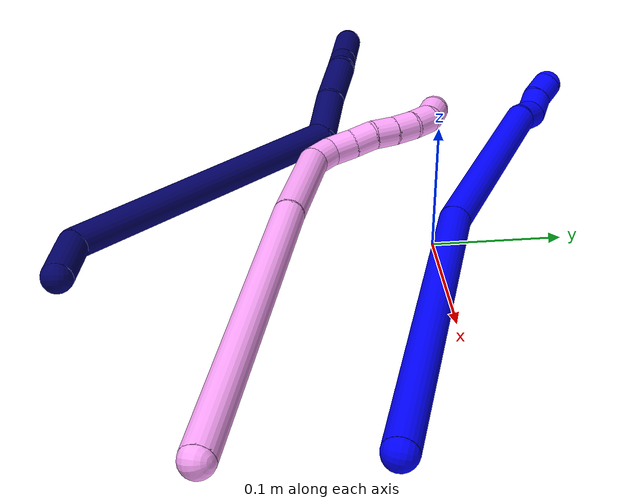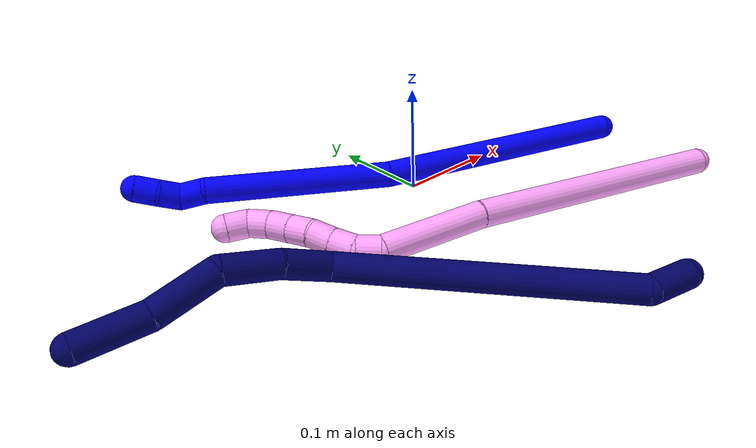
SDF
<sdf version="1.7">
 <world name="default">
  <model name="1">
   <static>0</static>
   <link name="1">
    <collision name="collision-cylinder-e_1_1_4">
     <pose>-0.117741 0.055267 -0.003864 -1.64059 -1.13099 1.1951</pose>
     <geometry><cylinder><radius>0.0125</radius><length>0.260248</length></cylinder></geometry>
     <surface>
      <friction><ode><mu>1.16</mu><mu2>1.16</mu2><slip1>0</slip1><slip2>0</slip2></ode></friction>
      <contact><ode><kp>1e+06</kp><kd>1</kd><max_vel>0</max_vel><min_depth>0.001</min_depth></ode></contact>
     </surface>
    </collision>
    <visual name="visual-cylinder-e_1_1_4">
     <pose>-0.117741 0.055267 -0.003864 -1.64059 -1.13099 1.1951</pose>
     <geometry><cylinder><radius>0.0125</radius><length>0.260248</length></cylinder></geometry>
     <material><ambient>0 0 1 1</ambient></material>
    </visual>
    <collision name="collision-cylinder-e_2_4_5">
     <pose>-0.310062 0.15118 -0.028153 -2.03646 -1.02309 1.47707</pose>
     <geometry><cylinder><radius>0.0125</radius><length>0.174716</length></cylinder></geometry>
     <surface>
      <friction><ode><mu>1.16</mu><mu2>1.16</mu2><slip1>0</slip1><slip2>0</slip2></ode></friction>
      <contact><ode><kp>1e+06</kp><kd>1</kd><max_vel>0</max_vel><min_depth>0.001</min_depth></ode></contact>
     </surface>
    </collision>
    <visual name="visual-cylinder-e_2_4_5">
     <pose>-0.310062 0.15118 -0.028153 -2.03646 -1.02309 1.47707</pose>
     <geometry><cylinder><radius>0.0125</radius><length>0.174716</length></cylinder></geometry>
     <material><ambient>0 0 1 1</ambient></material>
    </visual>
    <collision name="collision-cylinder-e_3_5_6">
     <pose>-0.39497 0.194431 -0.053467 -2.65199 -1.0786 2.35074</pose>
     <geometry><cylinder><radius>0.0125</radius><length>0.023441</length></cylinder></geometry>
     <surface>
      <friction><ode><mu>1.16</mu><mu2>1.16</mu2><slip1>0</slip1><slip2>0</slip2></ode></friction>
      <contact><ode><kp>1e+06</kp><kd>1</kd><max_vel>0</max_vel><min_depth>0.001</min_depth></ode></contact>
     </surface>
    </collision>
    <visual name="visual-cylinder-e_3_5_6">
     <pose>-0.39497 0.194431 -0.053467 -2.65199 -1.0786 2.35074</pose>
     <geometry><cylinder><radius>0.0125</radius><length>0.023441</length></cylinder></geometry>
     <material><ambient>0 0 1 1</ambient></material>
    </visual>
    <collision name="collision-cylinder-e_4_6_7">
     <pose>-0.412301 0.204464 -0.059637 -1.74171 -0.74854 0.872793</pose>
     <geometry><cylinder><radius>0.0125</radius><length>0.020575</length></cylinder></geometry>
     <surface>
      <friction><ode><mu>1.16</mu><mu2>1.16</mu2><slip1>0</slip1><slip2>0</slip2></ode></friction>
      <contact><ode><kp>1e+06</kp><kd>1</kd><max_vel>0</max_vel><min_depth>0.001</min_depth></ode></contact>
     </surface>
    </collision>
    <visual name="visual-cylinder-e_4_6_7">
     <pose>-0.412301 0.204464 -0.059637 -1.74171 -0.74854 0.872793</pose>
     <geometry><cylinder><radius>0.0125</radius><length>0.020575</length></cylinder></geometry>
     <material><ambient>0 0 1 1</ambient></material>
    </visual>
    <collision name="collision-cylinder-e_5_7_2">
     <pose>-0.426404 0.218659 -0.06469 -2.07919 -0.741875 1.16952</pose>
     <geometry><cylinder><radius>0.0125</radius><length>0.021019</length></cylinder></geometry>
     <surface>
      <friction><ode><mu>1.16</mu><mu2>1.16</mu2><slip1>0</slip1><slip2>0</slip2></ode></friction>
      <contact><ode><kp>1e+06</kp><kd>1</kd><max_vel>0</max_vel><min_depth>0.001</min_depth></ode></contact>
     </surface>
    </collision>
    <visual name="visual-cylinder-e_5_7_2">
     <pose>-0.426404 0.218659 -0.06469 -2.07919 -0.741875 1.16952</pose>
     <geometry><cylinder><radius>0.0125</radius><length>0.021019</length></cylinder></geometry>
     <material><ambient>0 0 1 1</ambient></material>
    </visual>
    <collision name="collision-sphere-2">
     <pose>-0.433505 0.225427 -0.068462 0 -0 0</pose>
     <geometry><sphere><radius>0.0125</radius></sphere></geometry>
     <surface>
      <friction><ode><mu>1.16</mu><mu2>1.16</mu2><slip1>0</slip1><slip2>0</slip2></ode></friction>
      <contact><ode><kp>1e+06</kp><kd>1</kd><max_vel>0</max_vel><min_depth>0.001</min_depth></ode></contact>
     </surface>
    </collision>
    <visual name="visual-sphere-2">
     <pose>-0.433505 0.225427 -0.068462 0 -0 0</pose>
     <geometry><sphere><radius>0.0125</radius></sphere></geometry>
     <material><ambient>0 0 1 1</ambient></material>
    </visual>
    <collision name="collision-sphere-7">
     <pose>-0.419303 0.211891 -0.060919 0 -0 0</pose>
     <geometry><sphere><radius>0.0125</radius></sphere></geometry>
     <surface>
      <friction><ode><mu>1.16</mu><mu2>1.16</mu2><slip1>0</slip1><slip2>0</slip2></ode></friction>
      <contact><ode><kp>1e+06</kp><kd>1</kd><max_vel>0</max_vel><min_depth>0.001</min_depth></ode></contact>
     </surface>
    </collision>
    <visual name="visual-sphere-7">
     <pose>-0.419303 0.211891 -0.060919 0 -0 0</pose>
     <geometry><sphere><radius>0.0125</radius></sphere></geometry>
     <material><ambient>0 0 1 1</ambient></material>
    </visual>
    <collision name="collision-sphere-6">
     <pose>-0.4053 0.197036 -0.058355 0 -0 0</pose>
     <geometry><sphere><radius>0.0125</radius></sphere></geometry>
     <surface>
      <friction><ode><mu>1.16</mu><mu2>1.16</mu2><slip1>0</slip1><slip2>0</slip2></ode></friction>
      <contact><ode><kp>1e+06</kp><kd>1</kd><max_vel>0</max_vel><min_depth>0.001</min_depth></ode></contact>
     </surface>
    </collision>
    <visual name="visual-sphere-6">
     <pose>-0.4053 0.197036 -0.058355 0 -0 0</pose>
     <geometry><sphere><radius>0.0125</radius></sphere></geometry>
     <material><ambient>0 0 1 1</ambient></material>
    </visual>
    <collision name="collision-sphere-5">
     <pose>-0.384641 0.191826 -0.048579 0 -0 0</pose>
     <geometry><sphere><radius>0.0125</radius></sphere></geometry>
     <surface>
      <friction><ode><mu>1.16</mu><mu2>1.16</mu2><slip1>0</slip1><slip2>0</slip2></ode></friction>
      <contact><ode><kp>1e+06</kp><kd>1</kd><max_vel>0</max_vel><min_depth>0.001</min_depth></ode></contact>
     </surface>
    </collision>
    <visual name="visual-sphere-5">
     <pose>-0.384641 0.191826 -0.048579 0 -0 0</pose>
     <geometry><sphere><radius>0.0125</radius></sphere></geometry>
     <material><ambient>0 0 1 1</ambient></material>
    </visual>
    <collision name="collision-sphere-1">
     <geometry><sphere><radius>0.0125</radius></sphere></geometry>
     <surface>
      <friction><ode><mu>1.16</mu><mu2>1.16</mu2><slip1>0</slip1><slip2>0</slip2></ode></friction>
      <contact><ode><kp>1e+06</kp><kd>1</kd><max_vel>0</max_vel><min_depth>0.001</min_depth></ode></contact>
     </surface>
    </collision>
    <visual name="visual-sphere-1">
     <geometry><sphere><radius>0.0125</radius></sphere></geometry>
     <material><ambient>0 0 1 1</ambient></material>
    </visual>
    <collision name="collision-sphere-4">
     <pose>-0.235482 0.110534 -0.007727 0 -0 0</pose>
     <geometry><sphere><radius>0.0125</radius></sphere></geometry>
     <surface>
      <friction><ode><mu>1.16</mu><mu2>1.16</mu2><slip1>0</slip1><slip2>0</slip2></ode></friction>
      <contact><ode><kp>1e+06</kp><kd>1</kd><max_vel>0</max_vel><min_depth>0.001</min_depth></ode></contact>
     </surface>
    </collision>
    <visual name="visual-sphere-4">
     <pose>-0.235482 0.110534 -0.007727 0 -0 0</pose>
     <geometry><sphere><radius>0.0125</radius></sphere></geometry>
     <material><ambient>0 0 1 1</ambient></material>
    </visual>
    <inertial>
     <pose>-0.223038 0.108315 -0.019529 0 -0 0</pose>
     <mass>0.5</mass>
     <inertia>
      <ixx>0.001042</ixx>
      <ixy>0</ixy>
      <ixz>0</ixz>
      <iyy>0.002371</iyy>
      <iyz>0</iyz>
      <izz>0.000881</izz>
     </inertia>
    </inertial>
   </link>
   <pose>0.232578 -0.059705 0.011514 1.42275 -0.430716 -0.217439</pose>
  </model>
  <model name="4">
   <static>0</static>
   <link name="4">
    <collision name="collision-cylinder-e_1_1_4">
     <pose>-0.103382 0.060996 0.049483 -0.889233 -0.921092 0.464224</pose>
     <geometry><cylinder><radius>0.0125</radius><length>0.259669</length></cylinder></geometry>
     <surface>
      <friction><ode><mu>1.16</mu><mu2>1.16</mu2><slip1>0</slip1><slip2>0</slip2></ode></friction>
      <contact><ode><kp>1e+06</kp><kd>1</kd><max_vel>0</max_vel><min_depth>0.001</min_depth></ode></contact>
     </surface>
    </collision>
    <visual name="visual-cylinder-e_1_1_4">
     <pose>-0.103382 0.060996 0.049483 -0.889233 -0.921092 0.464224</pose>
     <geometry><cylinder><radius>0.0125</radius><length>0.259669</length></cylinder></geometry>
     <material><ambient>1 0.65098 0.996078 1</ambient></material>
    </visual>
    <collision name="collision-cylinder-e_2_4_5">
     <pose>-0.246682 0.139673 0.118801 -0.728056 -0.983481 0.402628</pose>
     <geometry><cylinder><radius>0.0125</radius><length>0.095904</length></cylinder></geometry>
     <surface>
      <friction><ode><mu>1.16</mu><mu2>1.16</mu2><slip1>0</slip1><slip2>0</slip2></ode></friction>
      <contact><ode><kp>1e+06</kp><kd>1</kd><max_vel>0</max_vel><min_depth>0.001</min_depth></ode></contact>
     </surface>
    </collision>
    <visual name="visual-cylinder-e_2_4_5">
     <pose>-0.246682 0.139673 0.118801 -0.728056 -0.983481 0.402628</pose>
     <geometry><cylinder><radius>0.0125</radius><length>0.095904</length></cylinder></geometry>
     <material><ambient>1 0.65098 0.996078 1</ambient></material>
    </visual>
    <collision name="collision-cylinder-e_3_5_6">
     <pose>-0.296958 0.160693 0.137931 -1.77904 -1.2526 1.4571</pose>
     <geometry><cylinder><radius>0.0125</radius><length>0.021812</length></cylinder></geometry>
     <surface>
      <friction><ode><mu>1.16</mu><mu2>1.16</mu2><slip1>0</slip1><slip2>0</slip2></ode></friction>
      <contact><ode><kp>1e+06</kp><kd>1</kd><max_vel>0</max_vel><min_depth>0.001</min_depth></ode></contact>
     </surface>
    </collision>
    <visual name="visual-cylinder-e_3_5_6">
     <pose>-0.296958 0.160693 0.137931 -1.77904 -1.2526 1.4571</pose>
     <geometry><cylinder><radius>0.0125</radius><length>0.021812</length></cylinder></geometry>
     <material><ambient>1 0.65098 0.996078 1</ambient></material>
    </visual>
    <collision name="collision-cylinder-e_4_6_7">
     <pose>-0.316571 0.166634 0.132184 -2.66499 -1.02089 2.32295</pose>
     <geometry><cylinder><radius>0.0125</radius><length>0.021711</length></cylinder></geometry>
     <surface>
      <friction><ode><mu>1.16</mu><mu2>1.16</mu2><slip1>0</slip1><slip2>0</slip2></ode></friction>
      <contact><ode><kp>1e+06</kp><kd>1</kd><max_vel>0</max_vel><min_depth>0.001</min_depth></ode></contact>
     </surface>
    </collision>
    <visual name="visual-cylinder-e_4_6_7">
     <pose>-0.316571 0.166634 0.132184 -2.66499 -1.02089 2.32295</pose>
     <geometry><cylinder><radius>0.0125</radius><length>0.021711</length></cylinder></geometry>
     <material><ambient>1 0.65098 0.996078 1</ambient></material>
    </visual>
    <collision name="collision-cylinder-e_5_7_8">
     <pose>-0.334164 0.172248 0.122037 -2.6088 -0.95275 2.1687</pose>
     <geometry><cylinder><radius>0.0125</radius><length>0.02046</length></cylinder></geometry>
     <surface>
      <friction><ode><mu>1.16</mu><mu2>1.16</mu2><slip1>0</slip1><slip2>0</slip2></ode></friction>
      <contact><ode><kp>1e+06</kp><kd>1</kd><max_vel>0</max_vel><min_depth>0.001</min_depth></ode></contact>
     </surface>
    </collision>
    <visual name="visual-cylinder-e_5_7_8">
     <pose>-0.334164 0.172248 0.122037 -2.6088 -0.95275 2.1687</pose>
     <geometry><cylinder><radius>0.0125</radius><length>0.02046</length></cylinder></geometry>
     <material><ambient>1 0.65098 0.996078 1</ambient></material>
    </visual>
    <collision name="collision-cylinder-e_6_8_9">
     <pose>-0.351563 0.176305 0.112374 -2.91586 -1.09441 2.77371</pose>
     <geometry><cylinder><radius>0.0125</radius><length>0.020393</length></cylinder></geometry>
     <surface>
      <friction><ode><mu>1.16</mu><mu2>1.16</mu2><slip1>0</slip1><slip2>0</slip2></ode></friction>
      <contact><ode><kp>1e+06</kp><kd>1</kd><max_vel>0</max_vel><min_depth>0.001</min_depth></ode></contact>
     </surface>
    </collision>
    <visual name="visual-cylinder-e_6_8_9">
     <pose>-0.351563 0.176305 0.112374 -2.91586 -1.09441 2.77371</pose>
     <geometry><cylinder><radius>0.0125</radius><length>0.020393</length></cylinder></geometry>
     <material><ambient>1 0.65098 0.996078 1</ambient></material>
    </visual>
    <collision name="collision-cylinder-e_7_9_10">
     <pose>-0.369634 0.179172 0.103853 -2.71114 -1.11995 2.47053</pose>
     <geometry><cylinder><radius>0.0125</radius><length>0.020022</length></cylinder></geometry>
     <surface>
      <friction><ode><mu>1.16</mu><mu2>1.16</mu2><slip1>0</slip1><slip2>0</slip2></ode></friction>
      <contact><ode><kp>1e+06</kp><kd>1</kd><max_vel>0</max_vel><min_depth>0.001</min_depth></ode></contact>
     </surface>
    </collision>
    <visual name="visual-cylinder-e_7_9_10">
     <pose>-0.369634 0.179172 0.103853 -2.71114 -1.11995 2.47053</pose>
     <geometry><cylinder><radius>0.0125</radius><length>0.020022</length></cylinder></geometry>
     <material><ambient>1 0.65098 0.996078 1</ambient></material>
    </visual>
    <collision name="collision-cylinder-e_8_10_11">
     <pose>-0.388143 0.183356 0.097821 -2.2893 -1.25145 2.01972</pose>
     <geometry><cylinder><radius>0.0125</radius><length>0.020007</length></cylinder></geometry>
     <surface>
      <friction><ode><mu>1.16</mu><mu2>1.16</mu2><slip1>0</slip1><slip2>0</slip2></ode></friction>
      <contact><ode><kp>1e+06</kp><kd>1</kd><max_vel>0</max_vel><min_depth>0.001</min_depth></ode></contact>
     </surface>
    </collision>
    <visual name="visual-cylinder-e_8_10_11">
     <pose>-0.388143 0.183356 0.097821 -2.2893 -1.25145 2.01972</pose>
     <geometry><cylinder><radius>0.0125</radius><length>0.020007</length></cylinder></geometry>
     <material><ambient>1 0.65098 0.996078 1</ambient></material>
    </visual>
    <collision name="collision-cylinder-e_9_11_2">
     <pose>-0.406494 0.189447 0.098573 -0.923141 -1.08514 0.58273</pose>
     <geometry><cylinder><radius>0.0125</radius><length>0.020021</length></cylinder></geometry>
     <surface>
      <friction><ode><mu>1.16</mu><mu2>1.16</mu2><slip1>0</slip1><slip2>0</slip2></ode></friction>
      <contact><ode><kp>1e+06</kp><kd>1</kd><max_vel>0</max_vel><min_depth>0.001</min_depth></ode></contact>
     </surface>
    </collision>
    <visual name="visual-cylinder-e_9_11_2">
     <pose>-0.406494 0.189447 0.098573 -0.923141 -1.08514 0.58273</pose>
     <geometry><cylinder><radius>0.0125</radius><length>0.020021</length></cylinder></geometry>
     <material><ambient>1 0.65098 0.996078 1</ambient></material>
    </visual>
    <collision name="collision-sphere-2">
     <pose>-0.415347 0.193174 0.101392 0 -0 0</pose>
     <geometry><sphere><radius>0.0125</radius></sphere></geometry>
     <surface>
      <friction><ode><mu>1.16</mu><mu2>1.16</mu2><slip1>0</slip1><slip2>0</slip2></ode></friction>
      <contact><ode><kp>1e+06</kp><kd>1</kd><max_vel>0</max_vel><min_depth>0.001</min_depth></ode></contact>
     </surface>
    </collision>
    <visual name="visual-sphere-2">
     <pose>-0.415347 0.193174 0.101392 0 -0 0</pose>
     <geometry><sphere><radius>0.0125</radius></sphere></geometry>
     <material><ambient>1 0.65098 0.996078 1</ambient></material>
    </visual>
    <collision name="collision-sphere-11">
     <pose>-0.397641 0.185721 0.095754 0 -0 0</pose>
     <geometry><sphere><radius>0.0125</radius></sphere></geometry>
     <surface>
      <friction><ode><mu>1.16</mu><mu2>1.16</mu2><slip1>0</slip1><slip2>0</slip2></ode></friction>
      <contact><ode><kp>1e+06</kp><kd>1</kd><max_vel>0</max_vel><min_depth>0.001</min_depth></ode></contact>
     </surface>
    </collision>
    <visual name="visual-sphere-11">
     <pose>-0.397641 0.185721 0.095754 0 -0 0</pose>
     <geometry><sphere><radius>0.0125</radius></sphere></geometry>
     <material><ambient>1 0.65098 0.996078 1</ambient></material>
    </visual>
    <collision name="collision-sphere-10">
     <pose>-0.378645 0.180992 0.099888 0 -0 0</pose>
     <geometry><sphere><radius>0.0125</radius></sphere></geometry>
     <surface>
      <friction><ode><mu>1.16</mu><mu2>1.16</mu2><slip1>0</slip1><slip2>0</slip2></ode></friction>
      <contact><ode><kp>1e+06</kp><kd>1</kd><max_vel>0</max_vel><min_depth>0.001</min_depth></ode></contact>
     </surface>
    </collision>
    <visual name="visual-sphere-10">
     <pose>-0.378645 0.180992 0.099888 0 -0 0</pose>
     <geometry><sphere><radius>0.0125</radius></sphere></geometry>
     <material><ambient>1 0.65098 0.996078 1</ambient></material>
    </visual>
    <collision name="collision-sphere-9">
     <pose>-0.360624 0.177352 0.107817 0 -0 0</pose>
     <geometry><sphere><radius>0.0125</radius></sphere></geometry>
     <surface>
      <friction><ode><mu>1.16</mu><mu2>1.16</mu2><slip1>0</slip1><slip2>0</slip2></ode></friction>
      <contact><ode><kp>1e+06</kp><kd>1</kd><max_vel>0</max_vel><min_depth>0.001</min_depth></ode></contact>
     </surface>
    </collision>
    <visual name="visual-sphere-9">
     <pose>-0.360624 0.177352 0.107817 0 -0 0</pose>
     <geometry><sphere><radius>0.0125</radius></sphere></geometry>
     <material><ambient>1 0.65098 0.996078 1</ambient></material>
    </visual>
    <collision name="collision-sphere-4">
     <pose>-0.206765 0.121992 0.098966 0 -0 0</pose>
     <geometry><sphere><radius>0.0125</radius></sphere></geometry>
     <surface>
      <friction><ode><mu>1.16</mu><mu2>1.16</mu2><slip1>0</slip1><slip2>0</slip2></ode></friction>
      <contact><ode><kp>1e+06</kp><kd>1</kd><max_vel>0</max_vel><min_depth>0.001</min_depth></ode></contact>
     </surface>
    </collision>
    <visual name="visual-sphere-4">
     <pose>-0.206765 0.121992 0.098966 0 -0 0</pose>
     <geometry><sphere><radius>0.0125</radius></sphere></geometry>
     <material><ambient>1 0.65098 0.996078 1</ambient></material>
    </visual>
    <collision name="collision-sphere-1">
     <geometry><sphere><radius>0.0125</radius></sphere></geometry>
     <surface>
      <friction><ode><mu>1.16</mu><mu2>1.16</mu2><slip1>0</slip1><slip2>0</slip2></ode></friction>
      <contact><ode><kp>1e+06</kp><kd>1</kd><max_vel>0</max_vel><min_depth>0.001</min_depth></ode></contact>
     </surface>
    </collision>
    <visual name="visual-sphere-1">
     <geometry><sphere><radius>0.0125</radius></sphere></geometry>
     <material><ambient>1 0.65098 0.996078 1</ambient></material>
    </visual>
    <collision name="collision-sphere-8">
     <pose>-0.342502 0.175259 0.116931 0 -0 0</pose>
     <geometry><sphere><radius>0.0125</radius></sphere></geometry>
     <surface>
      <friction><ode><mu>1.16</mu><mu2>1.16</mu2><slip1>0</slip1><slip2>0</slip2></ode></friction>
      <contact><ode><kp>1e+06</kp><kd>1</kd><max_vel>0</max_vel><min_depth>0.001</min_depth></ode></contact>
     </surface>
    </collision>
    <visual name="visual-sphere-8">
     <pose>-0.342502 0.175259 0.116931 0 -0 0</pose>
     <geometry><sphere><radius>0.0125</radius></sphere></geometry>
     <material><ambient>1 0.65098 0.996078 1</ambient></material>
    </visual>
    <collision name="collision-sphere-5">
     <pose>-0.286599 0.157355 0.138636 0 -0 0</pose>
     <geometry><sphere><radius>0.0125</radius></sphere></geometry>
     <surface>
      <friction><ode><mu>1.16</mu><mu2>1.16</mu2><slip1>0</slip1><slip2>0</slip2></ode></friction>
      <contact><ode><kp>1e+06</kp><kd>1</kd><max_vel>0</max_vel><min_depth>0.001</min_depth></ode></contact>
     </surface>
    </collision>
    <visual name="visual-sphere-5">
     <pose>-0.286599 0.157355 0.138636 0 -0 0</pose>
     <geometry><sphere><radius>0.0125</radius></sphere></geometry>
     <material><ambient>1 0.65098 0.996078 1</ambient></material>
    </visual>
    <collision name="collision-sphere-6">
     <pose>-0.307316 0.164031 0.137225 0 -0 0</pose>
     <geometry><sphere><radius>0.0125</radius></sphere></geometry>
     <surface>
      <friction><ode><mu>1.16</mu><mu2>1.16</mu2><slip1>0</slip1><slip2>0</slip2></ode></friction>
      <contact><ode><kp>1e+06</kp><kd>1</kd><max_vel>0</max_vel><min_depth>0.001</min_depth></ode></contact>
     </surface>
    </collision>
    <visual name="visual-sphere-6">
     <pose>-0.307316 0.164031 0.137225 0 -0 0</pose>
     <geometry><sphere><radius>0.0125</radius></sphere></geometry>
     <material><ambient>1 0.65098 0.996078 1</ambient></material>
    </visual>
    <collision name="collision-sphere-7">
     <pose>-0.325827 0.169237 0.127143 0 -0 0</pose>
     <geometry><sphere><radius>0.0125</radius></sphere></geometry>
     <surface>
      <friction><ode><mu>1.16</mu><mu2>1.16</mu2><slip1>0</slip1><slip2>0</slip2></ode></friction>
      <contact><ode><kp>1e+06</kp><kd>1</kd><max_vel>0</max_vel><min_depth>0.001</min_depth></ode></contact>
     </surface>
    </collision>
    <visual name="visual-sphere-7">
     <pose>-0.325827 0.169237 0.127143 0 -0 0</pose>
     <geometry><sphere><radius>0.0125</radius></sphere></geometry>
     <material><ambient>1 0.65098 0.996078 1</ambient></material>
    </visual>
    <inertial>
     <pose>-0.20233 0.109051 0.081839 0 -0 0</pose>
     <mass>0.5</mass>
     <inertia>
      <ixx>0.001218</ixx>
      <ixy>0</ixy>
      <ixz>0</ixz>
      <iyy>0.001747</iyy>
      <iyz>0</iyz>
      <izz>0.00053</izz>
     </inertia>
    </inertial>
   </link>
   <pose>0.227272 -0.17906 0.011543 1.94375 -0.319996 -0.828923</pose>
  </model>
  <model name="7">
   <static>0</static>
   <link name="7">
    <collision name="collision-cylinder-e_1_1_4">
     <pose>-0.006939 0.014068 -0.013889 -2.34976 -0.33755 0.774181</pose>
     <geometry><cylinder><radius>0.0125</radius><length>0.041903</length></cylinder></geometry>
     <surface>
      <friction><ode><mu>1.16</mu><mu2>1.16</mu2><slip1>0</slip1><slip2>0</slip2></ode></friction>
      <contact><ode><kp>1e+06</kp><kd>1</kd><max_vel>0</max_vel><min_depth>0.001</min_depth></ode></contact>
     </surface>
    </collision>
    <visual name="visual-cylinder-e_1_1_4">
     <pose>-0.006939 0.014068 -0.013889 -2.34976 -0.33755 0.774181</pose>
     <geometry><cylinder><radius>0.0125</radius><length>0.041903</length></cylinder></geometry>
     <material><ambient>0.003922 0 0.403922 1</ambient></material>
    </visual>
    <collision name="collision-cylinder-e_2_4_5">
     <pose>-0.122983 0.063015 -0.079798 -2.55097 -1.04968 2.17408</pose>
     <geometry><cylinder><radius>0.0125</radius><length>0.25161</length></cylinder></geometry>
     <surface>
      <friction><ode><mu>1.16</mu><mu2>1.16</mu2><slip1>0</slip1><slip2>0</slip2></ode></friction>
      <contact><ode><kp>1e+06</kp><kd>1</kd><max_vel>0</max_vel><min_depth>0.001</min_depth></ode></contact>
     </surface>
    </collision>
    <visual name="visual-cylinder-e_2_4_5">
     <pose>-0.122983 0.063015 -0.079798 -2.55097 -1.04968 2.17408</pose>
     <geometry><cylinder><radius>0.0125</radius><length>0.25161</length></cylinder></geometry>
     <material><ambient>0.003922 0 0.403922 1</ambient></material>
    </visual>
    <collision name="collision-cylinder-e_3_5_6">
     <pose>-0.239246 0.106395 -0.150675 -2.71802 -0.333096 1.32714</pose>
     <geometry><cylinder><radius>0.0125</radius><length>0.043774</length></cylinder></geometry>
     <surface>
      <friction><ode><mu>1.16</mu><mu2>1.16</mu2><slip1>0</slip1><slip2>0</slip2></ode></friction>
      <contact><ode><kp>1e+06</kp><kd>1</kd><max_vel>0</max_vel><min_depth>0.001</min_depth></ode></contact>
     </surface>
    </collision>
    <visual name="visual-cylinder-e_3_5_6">
     <pose>-0.239246 0.106395 -0.150675 -2.71802 -0.333096 1.32714</pose>
     <geometry><cylinder><radius>0.0125</radius><length>0.043774</length></cylinder></geometry>
     <material><ambient>0.003922 0 0.403922 1</ambient></material>
    </visual>
    <collision name="collision-cylinder-e_4_6_7">
     <pose>-0.256109 0.127629 -0.187753 -2.5317 -0.411705 1.17146</pose>
     <geometry><cylinder><radius>0.0125</radius><length>0.048514</length></cylinder></geometry>
     <surface>
      <friction><ode><mu>1.16</mu><mu2>1.16</mu2><slip1>0</slip1><slip2>0</slip2></ode></friction>
      <contact><ode><kp>1e+06</kp><kd>1</kd><max_vel>0</max_vel><min_depth>0.001</min_depth></ode></contact>
     </surface>
    </collision>
    <visual name="visual-cylinder-e_4_6_7">
     <pose>-0.256109 0.127629 -0.187753 -2.5317 -0.411705 1.17146</pose>
     <geometry><cylinder><radius>0.0125</radius><length>0.048514</length></cylinder></geometry>
     <material><ambient>0.003922 0 0.403922 1</ambient></material>
    </visual>
    <collision name="collision-cylinder-e_5_7_8">
     <pose>-0.274829 0.164801 -0.217141 -1.99934 -0.323656 0.497612</pose>
     <geometry><cylinder><radius>0.0125</radius><length>0.056679</length></cylinder></geometry>
     <surface>
      <friction><ode><mu>1.16</mu><mu2>1.16</mu2><slip1>0</slip1><slip2>0</slip2></ode></friction>
      <contact><ode><kp>1e+06</kp><kd>1</kd><max_vel>0</max_vel><min_depth>0.001</min_depth></ode></contact>
     </surface>
    </collision>
    <visual name="visual-cylinder-e_5_7_8">
     <pose>-0.274829 0.164801 -0.217141 -1.99934 -0.323656 0.497612</pose>
     <geometry><cylinder><radius>0.0125</radius><length>0.056679</length></cylinder></geometry>
     <material><ambient>0.003922 0 0.403922 1</ambient></material>
    </visual>
    <collision name="collision-cylinder-e_6_8_2">
     <pose>-0.293894 0.210505 -0.244856 -2.23213 -0.357031 0.707113</pose>
     <geometry><cylinder><radius>0.0125</radius><length>0.057521</length></cylinder></geometry>
     <surface>
      <friction><ode><mu>1.16</mu><mu2>1.16</mu2><slip1>0</slip1><slip2>0</slip2></ode></friction>
      <contact><ode><kp>1e+06</kp><kd>1</kd><max_vel>0</max_vel><min_depth>0.001</min_depth></ode></contact>
     </surface>
    </collision>
    <visual name="visual-cylinder-e_6_8_2">
     <pose>-0.293894 0.210505 -0.244856 -2.23213 -0.357031 0.707113</pose>
     <geometry><cylinder><radius>0.0125</radius><length>0.057521</length></cylinder></geometry>
     <material><ambient>0.003922 0 0.403922 1</ambient></material>
    </visual>
    <collision name="collision-sphere-2">
     <pose>-0.303945 0.23177 -0.261405 0 -0 0</pose>
     <geometry><sphere><radius>0.0125</radius></sphere></geometry>
     <surface>
      <friction><ode><mu>1.16</mu><mu2>1.16</mu2><slip1>0</slip1><slip2>0</slip2></ode></friction>
      <contact><ode><kp>1e+06</kp><kd>1</kd><max_vel>0</max_vel><min_depth>0.001</min_depth></ode></contact>
     </surface>
    </collision>
    <visual name="visual-sphere-2">
     <pose>-0.303945 0.23177 -0.261405 0 -0 0</pose>
     <geometry><sphere><radius>0.0125</radius></sphere></geometry>
     <material><ambient>0.003922 0 0.403922 1</ambient></material>
    </visual>
    <collision name="collision-sphere-4">
     <pose>-0.013877 0.028137 -0.027777 0 -0 0</pose>
     <geometry><sphere><radius>0.0125</radius></sphere></geometry>
     <surface>
      <friction><ode><mu>1.16</mu><mu2>1.16</mu2><slip1>0</slip1><slip2>0</slip2></ode></friction>
      <contact><ode><kp>1e+06</kp><kd>1</kd><max_vel>0</max_vel><min_depth>0.001</min_depth></ode></contact>
     </surface>
    </collision>
    <visual name="visual-sphere-4">
     <pose>-0.013877 0.028137 -0.027777 0 -0 0</pose>
     <geometry><sphere><radius>0.0125</radius></sphere></geometry>
     <material><ambient>0.003922 0 0.403922 1</ambient></material>
    </visual>
    <collision name="collision-sphere-1">
     <geometry><sphere><radius>0.0125</radius></sphere></geometry>
     <surface>
      <friction><ode><mu>1.16</mu><mu2>1.16</mu2><slip1>0</slip1><slip2>0</slip2></ode></friction>
      <contact><ode><kp>1e+06</kp><kd>1</kd><max_vel>0</max_vel><min_depth>0.001</min_depth></ode></contact>
     </surface>
    </collision>
    <visual name="visual-sphere-1">
     <geometry><sphere><radius>0.0125</radius></sphere></geometry>
     <material><ambient>0.003922 0 0.403922 1</ambient></material>
    </visual>
    <collision name="collision-sphere-8">
     <pose>-0.283842 0.189239 -0.228306 0 -0 0</pose>
     <geometry><sphere><radius>0.0125</radius></sphere></geometry>
     <surface>
      <friction><ode><mu>1.16</mu><mu2>1.16</mu2><slip1>0</slip1><slip2>0</slip2></ode></friction>
      <contact><ode><kp>1e+06</kp><kd>1</kd><max_vel>0</max_vel><min_depth>0.001</min_depth></ode></contact>
     </surface>
    </collision>
    <visual name="visual-sphere-8">
     <pose>-0.283842 0.189239 -0.228306 0 -0 0</pose>
     <geometry><sphere><radius>0.0125</radius></sphere></geometry>
     <material><ambient>0.003922 0 0.403922 1</ambient></material>
    </visual>
    <collision name="collision-sphere-5">
     <pose>-0.23209 0.097893 -0.13182 0 -0 0</pose>
     <geometry><sphere><radius>0.0125</radius></sphere></geometry>
     <surface>
      <friction><ode><mu>1.16</mu><mu2>1.16</mu2><slip1>0</slip1><slip2>0</slip2></ode></friction>
      <contact><ode><kp>1e+06</kp><kd>1</kd><max_vel>0</max_vel><min_depth>0.001</min_depth></ode></contact>
     </surface>
    </collision>
    <visual name="visual-sphere-5">
     <pose>-0.23209 0.097893 -0.13182 0 -0 0</pose>
     <geometry><sphere><radius>0.0125</radius></sphere></geometry>
     <material><ambient>0.003922 0 0.403922 1</ambient></material>
    </visual>
    <collision name="collision-sphere-6">
     <pose>-0.246402 0.114896 -0.169531 0 -0 0</pose>
     <geometry><sphere><radius>0.0125</radius></sphere></geometry>
     <surface>
      <friction><ode><mu>1.16</mu><mu2>1.16</mu2><slip1>0</slip1><slip2>0</slip2></ode></friction>
      <contact><ode><kp>1e+06</kp><kd>1</kd><max_vel>0</max_vel><min_depth>0.001</min_depth></ode></contact>
     </surface>
    </collision>
    <visual name="visual-sphere-6">
     <pose>-0.246402 0.114896 -0.169531 0 -0 0</pose>
     <geometry><sphere><radius>0.0125</radius></sphere></geometry>
     <material><ambient>0.003922 0 0.403922 1</ambient></material>
    </visual>
    <collision name="collision-sphere-7">
     <pose>-0.265816 0.140362 -0.205976 0 -0 0</pose>
     <geometry><sphere><radius>0.0125</radius></sphere></geometry>
     <surface>
      <friction><ode><mu>1.16</mu><mu2>1.16</mu2><slip1>0</slip1><slip2>0</slip2></ode></friction>
      <contact><ode><kp>1e+06</kp><kd>1</kd><max_vel>0</max_vel><min_depth>0.001</min_depth></ode></contact>
     </surface>
    </collision>
    <visual name="visual-sphere-7">
     <pose>-0.265816 0.140362 -0.205976 0 -0 0</pose>
     <geometry><sphere><radius>0.0125</radius></sphere></geometry>
     <material><ambient>0.003922 0 0.403922 1</ambient></material>
    </visual>
    <inertial>
     <pose>-0.173228 0.097486 -0.125512 0 -0 0</pose>
     <mass>0.5</mass>
     <inertia>
      <ixx>0.000227</ixx>
      <ixy>0</ixy>
      <ixz>0</ixz>
      <iyy>0.001756</iyy>
      <iyz>0</iyz>
      <izz>0.000747</izz>
     </inertia>
    </inertial>
   </link>
   <pose>0.03313 -0.279444 0.011696 -2.44044 -0.161334 -1.41967</pose>
  </model>
 </world>
</sdf>
